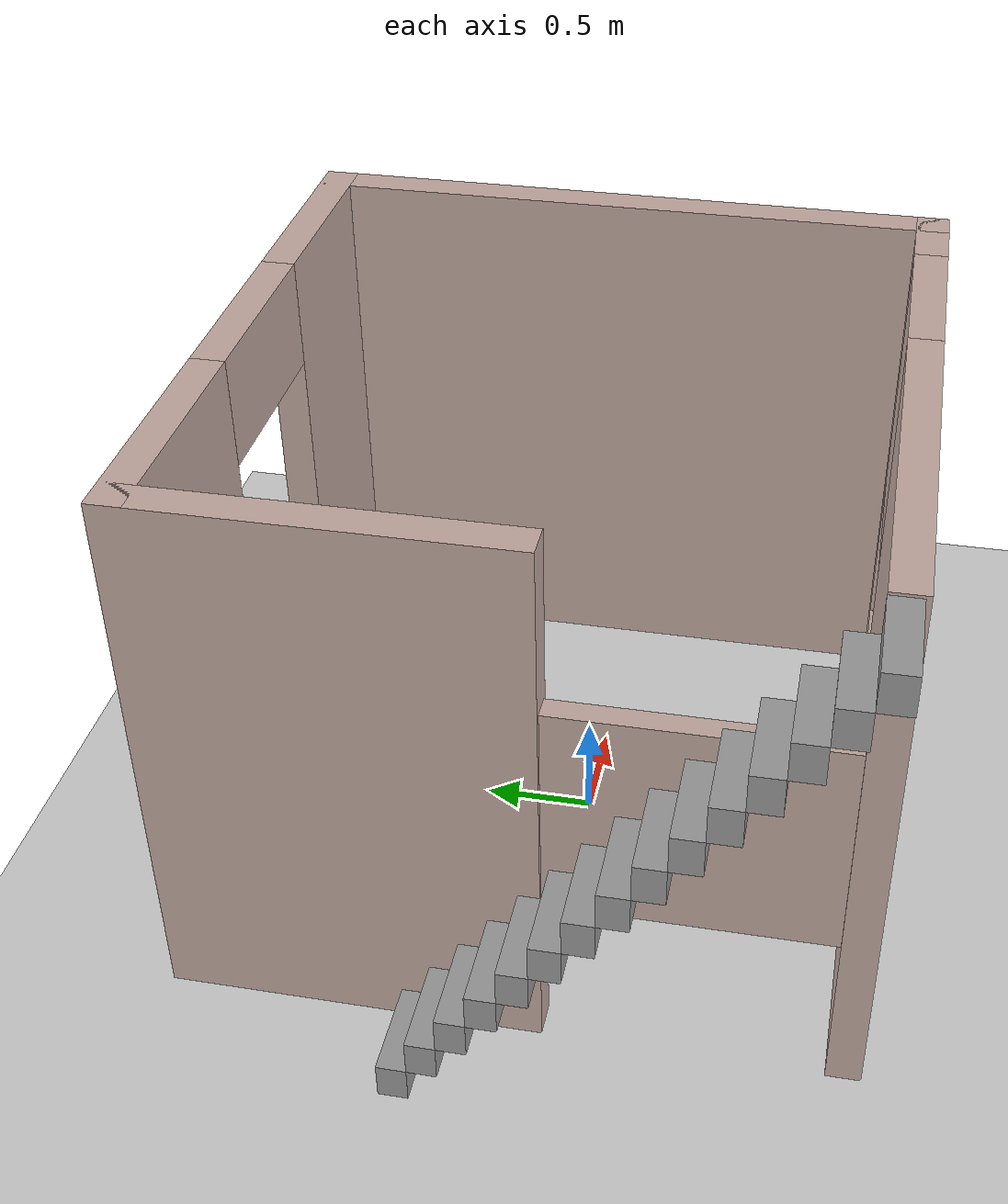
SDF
<sdf version="1.7">
 <world name="default">
  <light name="sun" type="directional">
   <pose>0 0 10 0 -0 0</pose>
   <diffuse>0.8 0.8 0.8 1</diffuse>
   <specular>0.2 0.2 0.2 1</specular>
   <attenuation>
    <range>1000</range>
    <constant>0.9</constant>
    <linear>0.01</linear>
    <quadratic>0.001</quadratic>
   </attenuation>
   <direction>-0.5 0.1 -0.9</direction>
   <spot><inner_angle>0</inner_angle><outer_angle>0</outer_angle><falloff>0</falloff></spot>
  </light>
  <model name="ground_plane">
   <static>1</static>
   <link name="link">
    <collision name="collision">
     <geometry><plane><normal>0 0 1</normal><size>100 100</size></plane></geometry>
     <surface>
      <contact><collide_bitmask>65535</collide_bitmask></contact>
      <friction><ode><mu>100</mu><mu2>50</mu2></ode></friction>
     </surface>
    </collision>
    <visual name="visual">
     <cast_shadows>0</cast_shadows>
     <geometry><plane><normal>0 0 1</normal><size>100 100</size></plane></geometry>
     <material>
      <script><uri>file://media/materials/scripts/gazebo.material</uri><name>Gazebo/Grey</name></script>
     </material>
    </visual>
   </link>
  </model>
  <gravity>0 0 -9.8</gravity>
  <magnetic_field>6e-06 2.3e-05 -4.2e-05</magnetic_field>
  <atmosphere type="adiabatic"/>
  <physics type="ode">
   <max_step_size>0.001</max_step_size>
   <real_time_factor>1</real_time_factor>
   <real_time_update_rate>1000</real_time_update_rate>
  </physics>
  <scene><ambient>0.4 0.4 0.4 1</ambient><background>0.7 0.7 0.7 1</background><shadows>1</shadows></scene>
  <spherical_coordinates>
   <surface_model>EARTH_WGS84</surface_model>
   <latitude_deg>0</latitude_deg>
   <longitude_deg>0</longitude_deg>
   <elevation>0</elevation>
   <heading_deg>0</heading_deg>
  </spherical_coordinates>
  <model name="autonous2">
   <pose>-0.152484 0.095 0 0 -0 0</pose>
   <link name="Stairs_0">
    <visual name="Stairs_0_Visual_0">
     <pose>-1.5086 0.386195 0.083333 0 -0 0</pose>
     <geometry><box><size>0.417769 0.128481 0.166667</size></box></geometry>
     <material>
      <script><uri>file://media/materials/scripts/gazebo.material</uri><name>Gazebo/Grey</name></script>
      <ambient>1 1 1 1</ambient>
     </material>
     <meta><layer>0</layer></meta>
    </visual>
    <collision name="Stairs_0_Collision_0">
     <geometry><box><size>0.417769 0.128481 0.166667</size></box></geometry>
     <pose>-1.5086 0.386195 0.083333 0 -0 0</pose>
    </collision>
    <visual name="Stairs_0_Visual_1">
     <pose>-1.5086 0.257714 0.25 0 -0 0</pose>
     <geometry><box><size>0.417769 0.128481 0.166667</size></box></geometry>
     <material>
      <script><uri>file://media/materials/scripts/gazebo.material</uri><name>Gazebo/Grey</name></script>
      <ambient>1 1 1 1</ambient>
     </material>
     <meta><layer>0</layer></meta>
    </visual>
    <collision name="Stairs_0_Collision_1">
     <geometry><box><size>0.417769 0.128481 0.166667</size></box></geometry>
     <pose>-1.5086 0.257714 0.25 0 -0 0</pose>
    </collision>
    <visual name="Stairs_0_Visual_2">
     <pose>-1.5086 0.129232 0.416667 0 -0 0</pose>
     <geometry><box><size>0.417769 0.128481 0.166667</size></box></geometry>
     <material>
      <script><uri>file://media/materials/scripts/gazebo.material</uri><name>Gazebo/Grey</name></script>
      <ambient>1 1 1 1</ambient>
     </material>
     <meta><layer>0</layer></meta>
    </visual>
    <collision name="Stairs_0_Collision_2">
     <geometry><box><size>0.417769 0.128481 0.166667</size></box></geometry>
     <pose>-1.5086 0.129232 0.416667 0 -0 0</pose>
    </collision>
    <visual name="Stairs_0_Visual_3">
     <pose>-1.5086 0.000751 0.583333 0 -0 0</pose>
     <geometry><box><size>0.417769 0.128481 0.166667</size></box></geometry>
     <material>
      <script><uri>file://media/materials/scripts/gazebo.material</uri><name>Gazebo/Grey</name></script>
      <ambient>1 1 1 1</ambient>
     </material>
     <meta><layer>0</layer></meta>
    </visual>
    <collision name="Stairs_0_Collision_3">
     <geometry><box><size>0.417769 0.128481 0.166667</size></box></geometry>
     <pose>-1.5086 0.000751 0.583333 0 -0 0</pose>
    </collision>
    <visual name="Stairs_0_Visual_4">
     <pose>-1.5086 -0.127731 0.75 0 -0 0</pose>
     <geometry><box><size>0.417769 0.128481 0.166667</size></box></geometry>
     <material>
      <script><uri>file://media/materials/scripts/gazebo.material</uri><name>Gazebo/Grey</name></script>
      <ambient>1 1 1 1</ambient>
     </material>
     <meta><layer>0</layer></meta>
    </visual>
    <collision name="Stairs_0_Collision_4">
     <geometry><box><size>0.417769 0.128481 0.166667</size></box></geometry>
     <pose>-1.5086 -0.127731 0.75 0 -0 0</pose>
    </collision>
    <visual name="Stairs_0_Visual_5">
     <pose>-1.5086 -0.256212 0.916667 0 -0 0</pose>
     <geometry><box><size>0.417769 0.128481 0.166667</size></box></geometry>
     <material>
      <script><uri>file://media/materials/scripts/gazebo.material</uri><name>Gazebo/Grey</name></script>
      <ambient>1 1 1 1</ambient>
     </material>
     <meta><layer>0</layer></meta>
    </visual>
    <collision name="Stairs_0_Collision_5">
     <geometry><box><size>0.417769 0.128481 0.166667</size></box></geometry>
     <pose>-1.5086 -0.256212 0.916667 0 -0 0</pose>
    </collision>
    <visual name="Stairs_0_Visual_6">
     <pose>-1.5086 -0.384693 1.08333 0 -0 0</pose>
     <geometry><box><size>0.417769 0.128481 0.166667</size></box></geometry>
     <material>
      <script><uri>file://media/materials/scripts/gazebo.material</uri><name>Gazebo/Grey</name></script>
      <ambient>1 1 1 1</ambient>
     </material>
     <meta><layer>0</layer></meta>
    </visual>
    <collision name="Stairs_0_Collision_6">
     <geometry><box><size>0.417769 0.128481 0.166667</size></box></geometry>
     <pose>-1.5086 -0.384693 1.08333 0 -0 0</pose>
    </collision>
    <visual name="Stairs_0_Visual_7">
     <pose>-1.5086 -0.513175 1.25 0 -0 0</pose>
     <geometry><box><size>0.417769 0.128481 0.166667</size></box></geometry>
     <material>
      <script><uri>file://media/materials/scripts/gazebo.material</uri><name>Gazebo/Grey</name></script>
      <ambient>1 1 1 1</ambient>
     </material>
     <meta><layer>0</layer></meta>
    </visual>
    <collision name="Stairs_0_Collision_7">
     <geometry><box><size>0.417769 0.128481 0.166667</size></box></geometry>
     <pose>-1.5086 -0.513175 1.25 0 -0 0</pose>
    </collision>
    <visual name="Stairs_0_Visual_8">
     <pose>-1.5086 -0.641656 1.41667 0 -0 0</pose>
     <geometry><box><size>0.417769 0.128481 0.166667</size></box></geometry>
     <material>
      <script><uri>file://media/materials/scripts/gazebo.material</uri><name>Gazebo/Grey</name></script>
      <ambient>1 1 1 1</ambient>
     </material>
     <meta><layer>0</layer></meta>
    </visual>
    <collision name="Stairs_0_Collision_8">
     <geometry><box><size>0.417769 0.128481 0.166667</size></box></geometry>
     <pose>-1.5086 -0.641656 1.41667 0 -0 0</pose>
    </collision>
    <visual name="Stairs_0_Visual_9">
     <pose>-1.5086 -0.770138 1.58333 0 -0 0</pose>
     <geometry><box><size>0.417769 0.128481 0.166667</size></box></geometry>
     <material>
      <script><uri>file://media/materials/scripts/gazebo.material</uri><name>Gazebo/Grey</name></script>
      <ambient>1 1 1 1</ambient>
     </material>
     <meta><layer>0</layer></meta>
    </visual>
    <collision name="Stairs_0_Collision_9">
     <geometry><box><size>0.417769 0.128481 0.166667</size></box></geometry>
     <pose>-1.5086 -0.770138 1.58333 0 -0 0</pose>
    </collision>
    <visual name="Stairs_0_Visual_10">
     <pose>-1.5086 -0.898619 1.75 0 -0 0</pose>
     <geometry><box><size>0.417769 0.128481 0.166667</size></box></geometry>
     <material>
      <script><uri>file://media/materials/scripts/gazebo.material</uri><name>Gazebo/Grey</name></script>
      <ambient>1 1 1 1</ambient>
     </material>
     <meta><layer>0</layer></meta>
    </visual>
    <collision name="Stairs_0_Collision_10">
     <geometry><box><size>0.417769 0.128481 0.166667</size></box></geometry>
     <pose>-1.5086 -0.898619 1.75 0 -0 0</pose>
    </collision>
    <visual name="Stairs_0_Visual_11">
     <pose>-1.5086 -1.0271 1.91667 0 -0 0</pose>
     <geometry><box><size>0.417769 0.128481 0.166667</size></box></geometry>
     <material>
      <script><uri>file://media/materials/scripts/gazebo.material</uri><name>Gazebo/Grey</name></script>
      <ambient>1 1 1 1</ambient>
     </material>
     <meta><layer>0</layer></meta>
    </visual>
    <collision name="Stairs_0_Collision_11">
     <geometry><box><size>0.417769 0.128481 0.166667</size></box></geometry>
     <pose>-1.5086 -1.0271 1.91667 0 -0 0</pose>
    </collision>
    <visual name="Stairs_0_Visual_12">
     <pose>-1.5086 -1.15558 2.08333 0 -0 0</pose>
     <geometry><box><size>0.417769 0.128481 0.166667</size></box></geometry>
     <material>
      <script><uri>file://media/materials/scripts/gazebo.material</uri><name>Gazebo/Grey</name></script>
      <ambient>1 1 1 1</ambient>
     </material>
     <meta><layer>0</layer></meta>
    </visual>
    <collision name="Stairs_0_Collision_12">
     <geometry><box><size>0.417769 0.128481 0.166667</size></box></geometry>
     <pose>-1.5086 -1.15558 2.08333 0 -0 0</pose>
    </collision>
    <visual name="Stairs_0_Visual_13">
     <pose>-1.5086 -1.28406 2.25 0 -0 0</pose>
     <geometry><box><size>0.417769 0.128481 0.166667</size></box></geometry>
     <material>
      <script><uri>file://media/materials/scripts/gazebo.material</uri><name>Gazebo/Grey</name></script>
      <ambient>1 1 1 1</ambient>
     </material>
     <meta><layer>0</layer></meta>
    </visual>
    <collision name="Stairs_0_Collision_13">
     <geometry><box><size>0.417769 0.128481 0.166667</size></box></geometry>
     <pose>-1.5086 -1.28406 2.25 0 -0 0</pose>
    </collision>
    <visual name="Stairs_0_Visual_14">
     <pose>-1.5086 -1.41254 2.41667 0 -0 0</pose>
     <geometry><box><size>0.417769 0.128481 0.166667</size></box></geometry>
     <material>
      <script><uri>file://media/materials/scripts/gazebo.material</uri><name>Gazebo/Grey</name></script>
      <ambient>1 1 1 1</ambient>
     </material>
     <meta><layer>0</layer></meta>
    </visual>
    <collision name="Stairs_0_Collision_14">
     <geometry><box><size>0.417769 0.128481 0.166667</size></box></geometry>
     <pose>-1.5086 -1.41254 2.41667 0 -0 0</pose>
    </collision>
   </link>
   <link name="Wall_5">
    <collision name="Wall_5_Collision"><geometry><box><size>1.5 0.1 1</size></box></geometry></collision>
    <visual name="Wall_5_Visual">
     <pose>0 0 1.25 0 -0 0</pose>
     <geometry><box><size>1.5 0.1 1</size></box></geometry>
     <material>
      <script><uri>file://media/materials/scripts/gazebo.material</uri><name>Gazebo/Grey</name></script>
      <ambient>0.760784 0.662745 0.627451 1</ambient>
     </material>
     <meta><layer>0</layer></meta>
    </visual>
    <pose>-1.20752 -0.75 0 0 -0 -1.5708</pose>
   </link>
   <link name="Wall_6">
    <pose>0.217484 -1.425 0 0 -0 0</pose>
    <visual name="Wall_6_Visual_0">
     <pose>-0.599592 0 1.25 0 -0 0</pose>
     <geometry><box><size>1.80082 0.15 2.5</size></box></geometry>
     <material>
      <script><uri>file://media/materials/scripts/gazebo.material</uri><name>Gazebo/Grey</name></script>
      <ambient>0.760784 0.662745 0.627451 1</ambient>
     </material>
     <meta><layer>0</layer></meta>
    </visual>
    <collision name="Wall_6_Collision_0">
     <geometry><box><size>1.80082 0.15 2.5</size></box></geometry>
     <pose>-0.599592 0 1.25 0 -0 0</pose>
    </collision>
    <visual name="Wall_6_Visual_1">
     <pose>0.900408 0 0.25 0 -0 0</pose>
     <geometry><box><size>1.19918 0.15 0.5</size></box></geometry>
     <material>
      <script><uri>file://media/materials/scripts/gazebo.material</uri><name>Gazebo/Grey</name></script>
      <ambient>0.760784 0.662745 0.627451 1</ambient>
     </material>
     <meta><layer>0</layer></meta>
    </visual>
    <collision name="Wall_6_Collision_1">
     <geometry><box><size>1.19918 0.15 0.5</size></box></geometry>
     <pose>0.900408 0 0.25 0 -0 0</pose>
    </collision>
    <visual name="Wall_6_Visual_2">
     <pose>1.30041 0 1.5 0 -0 0</pose>
     <geometry><box><size>0.399184 0.15 2</size></box></geometry>
     <material>
      <script><uri>file://media/materials/scripts/gazebo.material</uri><name>Gazebo/Grey</name></script>
      <ambient>0.760784 0.662745 0.627451 1</ambient>
     </material>
     <meta><layer>0</layer></meta>
    </visual>
    <collision name="Wall_6_Collision_2">
     <geometry><box><size>0.399184 0.15 2</size></box></geometry>
     <pose>1.30041 0 1.5 0 -0 0</pose>
    </collision>
    <visual name="Wall_6_Visual_3">
     <pose>0.700816 0 1.9 0 -0 0</pose>
     <geometry><box><size>0.8 0.15 1.2</size></box></geometry>
     <material>
      <script><uri>file://media/materials/scripts/gazebo.material</uri><name>Gazebo/Grey</name></script>
      <ambient>0.760784 0.662745 0.627451 1</ambient>
     </material>
     <meta><layer>0</layer></meta>
    </visual>
    <collision name="Wall_6_Collision_3">
     <geometry><box><size>0.8 0.15 1.2</size></box></geometry>
     <pose>0.700816 0 1.9 0 -0 0</pose>
    </collision>
   </link>
   <link name="Wall_7">
    <collision name="Wall_7_Collision">
     <geometry><box><size>3 0.15 2.5</size></box></geometry>
     <pose>0 0 1.25 0 -0 0</pose>
    </collision>
    <visual name="Wall_7_Visual">
     <pose>0 0 1.25 0 -0 0</pose>
     <geometry><box><size>3 0.15 2.5</size></box></geometry>
     <material>
      <script><uri>file://media/materials/scripts/gazebo.material</uri><name>Gazebo/Grey</name></script>
      <ambient>0.760784 0.662745 0.627451 1</ambient>
     </material>
     <meta><layer>0</layer></meta>
    </visual>
    <pose>1.64248 -0 0 0 -0 1.5708</pose>
   </link>
   <link name="Wall_8">
    <pose>0.217484 1.425 0 0 -0 3.14159</pose>
    <visual name="Wall_8_Visual_0">
     <pose>-0.992383 0 1.25 0 -0 0</pose>
     <geometry><box><size>1.01524 0.15 2.5</size></box></geometry>
     <material>
      <script><uri>file://media/materials/scripts/gazebo.material</uri><name>Gazebo/Grey</name></script>
      <ambient>0.760784 0.662745 0.627451 1</ambient>
     </material>
     <meta><layer>0</layer></meta>
    </visual>
    <collision name="Wall_8_Collision_0">
     <geometry><box><size>1.01524 0.15 2.5</size></box></geometry>
     <pose>-0.992383 0 1.25 0 -0 0</pose>
    </collision>
    <visual name="Wall_8_Visual_1">
     <pose>0.957617 0 1.25 0 -0 0</pose>
     <geometry><box><size>1.08476 0.15 2.5</size></box></geometry>
     <material>
      <script><uri>file://media/materials/scripts/gazebo.material</uri><name>Gazebo/Grey</name></script>
      <ambient>0.760784 0.662745 0.627451 1</ambient>
     </material>
     <meta><layer>0</layer></meta>
    </visual>
    <collision name="Wall_8_Collision_1">
     <geometry><box><size>1.08476 0.15 2.5</size></box></geometry>
     <pose>0.957617 0 1.25 0 -0 0</pose>
    </collision>
    <visual name="Wall_8_Visual_2">
     <pose>-0.034765 0 2.25 0 -0 0</pose>
     <geometry><box><size>0.9 0.15 0.5</size></box></geometry>
     <material>
      <script><uri>file://media/materials/scripts/gazebo.material</uri><name>Gazebo/Grey</name></script>
      <ambient>0.760784 0.662745 0.627451 1</ambient>
     </material>
     <meta><layer>0</layer></meta>
    </visual>
    <collision name="Wall_8_Collision_2">
     <geometry><box><size>0.9 0.15 0.5</size></box></geometry>
     <pose>-0.034765 0 2.25 0 -0 0</pose>
    </collision>
   </link>
   <link name="Wall_9">
    <collision name="Wall_9_Collision">
     <geometry><box><size>1.65 0.15 2.5</size></box></geometry>
     <pose>0 0 1.25 0 -0 0</pose>
    </collision>
    <visual name="Wall_9_Visual">
     <pose>0 0 1.25 0 -0 0</pose>
     <geometry><box><size>1.65 0.15 2.5</size></box></geometry>
     <material>
      <script><uri>file://media/materials/scripts/gazebo.material</uri><name>Gazebo/Grey</name></script>
      <ambient>0.760784 0.662745 0.627451 1</ambient>
     </material>
     <meta><layer>0</layer></meta>
    </visual>
    <pose>-1.20752 0.675 0 0 -0 -1.5708</pose>
   </link>
   <static>1</static>
  </model>
 </world>
</sdf>
